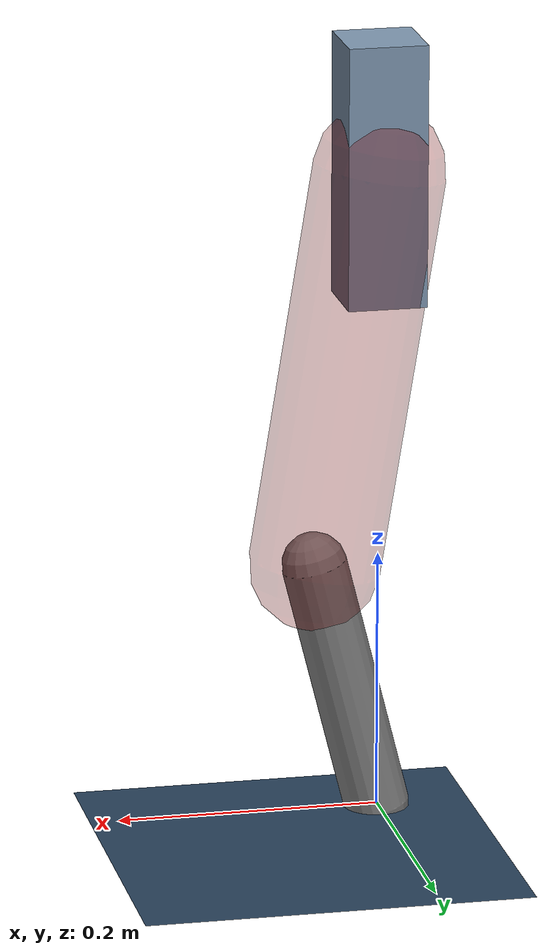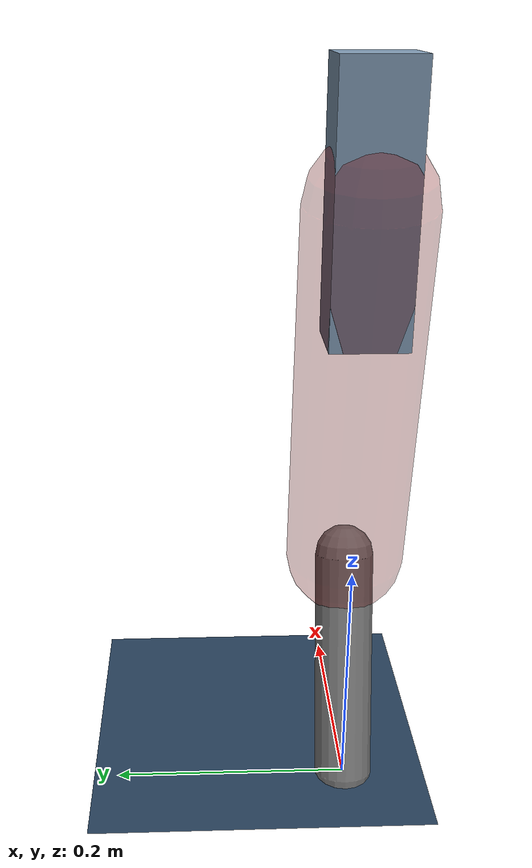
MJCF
<mujoco model="Hopper2D">
	<compiler inertiafromgeom="true" angle="radian" />
	<option timestep="0.001" integrator="implicit" cone="elliptic" solver="Newton" tolerance="1e-10" />

	<default>
		<geom contype="1" conaffinity="1" condim="3" friction="2 0.005 0.0001" solref="0.005 1" />
		<joint limited="true" damping="0.1" />
	</default>

	<asset>
		<texture name="skybox" type="skybox" builtin="gradient" rgb1=".4 .6 .8" rgb2="0 0 0" width="800" height="800" />
		<texture name="grid" type="2d" builtin="checker" rgb1=".1 .2 .3" rgb2=".2 .3 .4" width="300" height="300" mark="edge" markrgb=".2 .3 .4" />
		<material name="ground" texture="grid" texrepeat="1 1" texuniform="true" reflectance="0.1" />
		<material name="leg" rgba="0.5 0.6 0.7 1" />
	</asset>

	<worldbody>

		<geom name="floor" type="plane" size="5 5 0.25" material="ground" />

		<light directional="false" diffuse="0.8 0.8 0.8" specular="0.3 0.3 0.3" pos="0 0 2" dir="0 0 -1" />
		<light mode="targetbodycom" target="base" directional="false" diffuse="0.8 0.8 0.8" specular="0.3 0.3 0.3" pos="0 0 2" dir="0 0 -1" />

		<camera name="fixed" pos="0 -2 1" xyaxes="1 0 0 0 0 1" />
		<camera name="tracking" mode="trackcom" pos="0 -3 1" />

		<body name="root" pos="0 0 0.4990939681236126">
			<joint name="slide_x" type="slide" axis="1 0 0" range="-100 100" />
			<joint name="slide_z" type="slide" axis="0 0 1" range="0 10" />

			<body name="base" pos="0 0 0">
				<geom name="torso" type="box" size="0.03 0.03 0.1" mass="2.354" material="leg" />

				<body name="link1" pos="0 0 0" euler="0 1.411447864339968 0">
					<joint type="hinge" axis="0 -1 0" pos="0 0 0" name="hinge1" limited="true" range="-3.14 3.14" stiffness="0" damping="0.1" />
					<geom name="thigh" type="capsule" fromto="0 0 0 0.30882275785523255 0 0" size="0.05" rgba="0.5 0 0 0.3" mass="1.0127037219946513" />

					<body name="link2" pos="0.30882275785523255 0 0" euler="0 0.4065385120520343 0">
						<joint type="hinge" axis="0 -1 0" pos="0 0 0" name="hinge2" limited="true" range="-3.14 3.14" stiffness="0" damping="0.1" />
						<geom name="shank" type="capsule" fromto="0 0 0 0.20027121026838002 0 0" size="0.025" mass="0.401116968214704" />

					</body>
				</body>
			</body>
		</body>
	</worldbody>

	<actuator>
		<motor name="torque1" joint="hinge1" ctrlrange="-70.84905444746292 70.84905444746292" ctrllimited="true" gear="1" />
		<motor name="torque2" joint="hinge2" ctrlrange="-91.7220899468994 91.7220899468994" ctrllimited="true" gear="1" />
	</actuator>
</mujoco>
